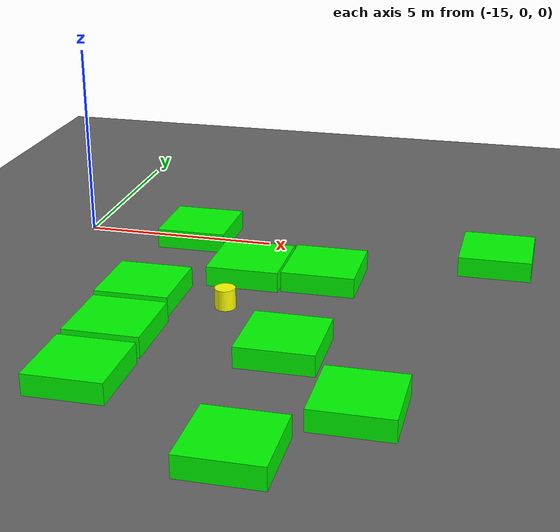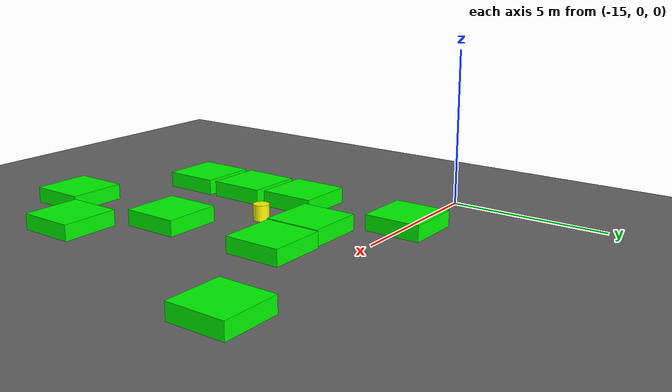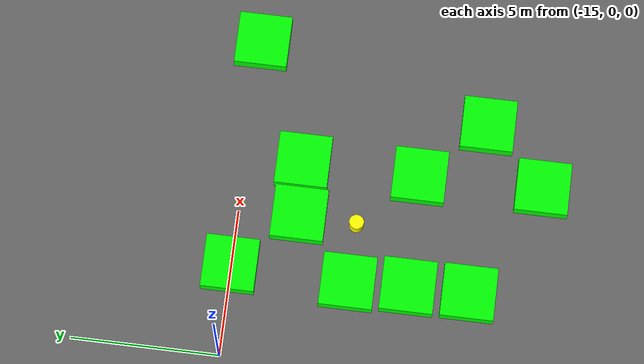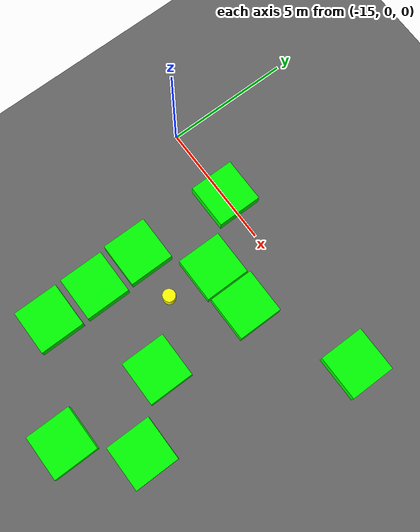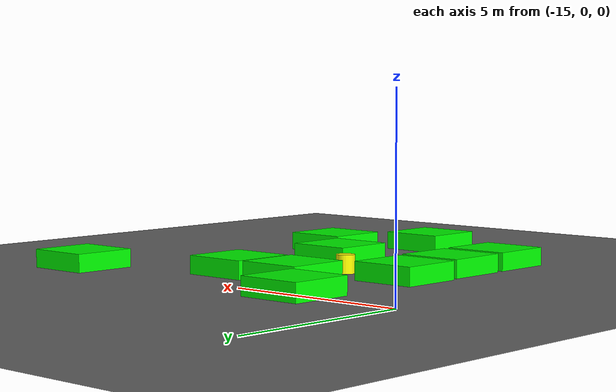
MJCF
<mujoco model="lvl5_corridor_obs10_dmid_depth3_seed2083">
    <compiler angle="degree" coordinate="local" inertiafromgeom="true"/>
    <option integrator="RK4" timestep="0.01"/>

    <asset>
        <texture builtin="gradient" height="100" rgb1="0.6 0.8 1" rgb2="0 0 0" type="skybox" width="100"/>
        <texture name="floor_texture" type="2d" builtin="checker" width="100" height="100" rgb1="0 0 0" rgb2="0.8 0.8 0.8"/>
        <material name="MatPlane" reflectance="0.5" shininess="1" specular="1" texrepeat="10 10" texture="floor_texture"/>
    </asset>

    <!-- Excluding the contact between the agent and the goal, and the agent and the floor -->
    <contact>
        <exclude body1="agent" body2="goal"/>
        <exclude body1 = "agent" body2 = "floor"/>
    </contact>

    <extension>
        <plugin plugin = "mujoco.pid">
            <instance name = "pid1">
                <config key="kp" value="2"/>
                <config key="ki" value="0"/>
                <config key="kd" value="55"/>
            </instance>
        </plugin>
    </extension>

    <worldbody>
        <light cutoff="100" diffuse="1 1 1" dir="-0 0 -1.3" directional="true" exponent="1" pos="0 0 1.3" specular=".1 .1 .1"/>
        <body name="floor" pos="0 0 0">
            <geom name="floor_geom" type="plane" size="20 20 0.1" material="MatPlane"/>
        </body>

                <body name="goal" pos="0.0000 0.0000 0">
            <geom name="goal_geom" type="plane" size="0.5 0.5 1" pos="0 0 0" rgba="1 0 0 1"/>
        </body>

                <body name="agent" pos="-10.0000 -4.0000 0.250">
            <joint name="j1" type="slide" axis ="1 0 0 "/>
            <joint name="j2" type="slide" axis ="0 1 0 "/>
            <geom name="agent_geom" type="cylinder" size="0.25 0.25 0.250" rgba="1 1 0 1"/>
        </body>

        <body name="obstacle1" pos="-11.9015 0.0362 0.250">  <geom name="obstacle1_geom" type="box" size="0.9000 0.9000 0.250" rgba="0 1 0 1"/></body>
        <body name="obstacle2" pos="-3.9751 -0.0763 0.250">  <geom name="obstacle2_geom" type="box" size="0.9000 0.9000 0.250" rgba="0 1 0 1"/></body>
        <body name="obstacle3" pos="-9.9115 -2.0460 0.250">  <geom name="obstacle3_geom" type="box" size="0.9000 0.9000 0.250" rgba="0 1 0 1"/></body>
        <body name="obstacle4" pos="-8.0479 -1.9622 0.250">  <geom name="obstacle4_geom" type="box" size="0.9000 0.9000 0.250" rgba="0 1 0 1"/></body>
        <body name="obstacle5" pos="-12.0346 -3.9458 0.250">  <geom name="obstacle5_geom" type="box" size="0.9000 0.9000 0.250" rgba="0 1 0 1"/></body>
        <body name="obstacle6" pos="-11.9452 -5.9668 0.250">  <geom name="obstacle6_geom" type="box" size="0.9000 0.9000 0.250" rgba="0 1 0 1"/></body>
        <body name="obstacle7" pos="-8.0924 -5.9298 0.250">  <geom name="obstacle7_geom" type="box" size="0.9000 0.9000 0.250" rgba="0 1 0 1"/></body>
        <body name="obstacle8" pos="-11.9215 -8.0020 0.250">  <geom name="obstacle8_geom" type="box" size="0.9000 0.9000 0.250" rgba="0 1 0 1"/></body>
        <body name="obstacle9" pos="-6.0366 -8.0507 0.250">  <geom name="obstacle9_geom" type="box" size="0.9000 0.9000 0.250" rgba="0 1 0 1"/></body>
        <body name="obstacle10" pos="-8.0076 -10.0987 0.250">  <geom name="obstacle10_geom" type="box" size="0.9000 0.9000 0.250" rgba="0 1 0 1"/></body>

    </worldbody>

    <sensor>
<!-- SENSORS -->

        <distance name="dist1" geom1="agent_geom" geom2="obstacle1_geom" cutoff="1.5"/>
        <distance name="dist2" geom1="agent_geom" geom2="obstacle2_geom" cutoff="1.5"/>
        <distance name="dist3" geom1="agent_geom" geom2="obstacle3_geom" cutoff="1.5"/>
        <distance name="dist4" geom1="agent_geom" geom2="obstacle4_geom" cutoff="1.5"/>
        <distance name="dist5" geom1="agent_geom" geom2="obstacle5_geom" cutoff="1.5"/>
        <distance name="dist6" geom1="agent_geom" geom2="obstacle6_geom" cutoff="1.5"/>
        <distance name="dist7" geom1="agent_geom" geom2="obstacle7_geom" cutoff="1.5"/>
        <distance name="dist8" geom1="agent_geom" geom2="obstacle8_geom" cutoff="1.5"/>
        <distance name="dist9" geom1="agent_geom" geom2="obstacle9_geom" cutoff="1.5"/>
        <distance name="dist10" geom1="agent_geom" geom2="obstacle10_geom" cutoff="1.5"/>
</sensor>

    <actuator>
        <plugin joint="j1" plugin="mujoco.pid" instance="pid1" />
        <plugin joint="j2" plugin="mujoco.pid" instance="pid1"/>
    </actuator>
</mujoco>
